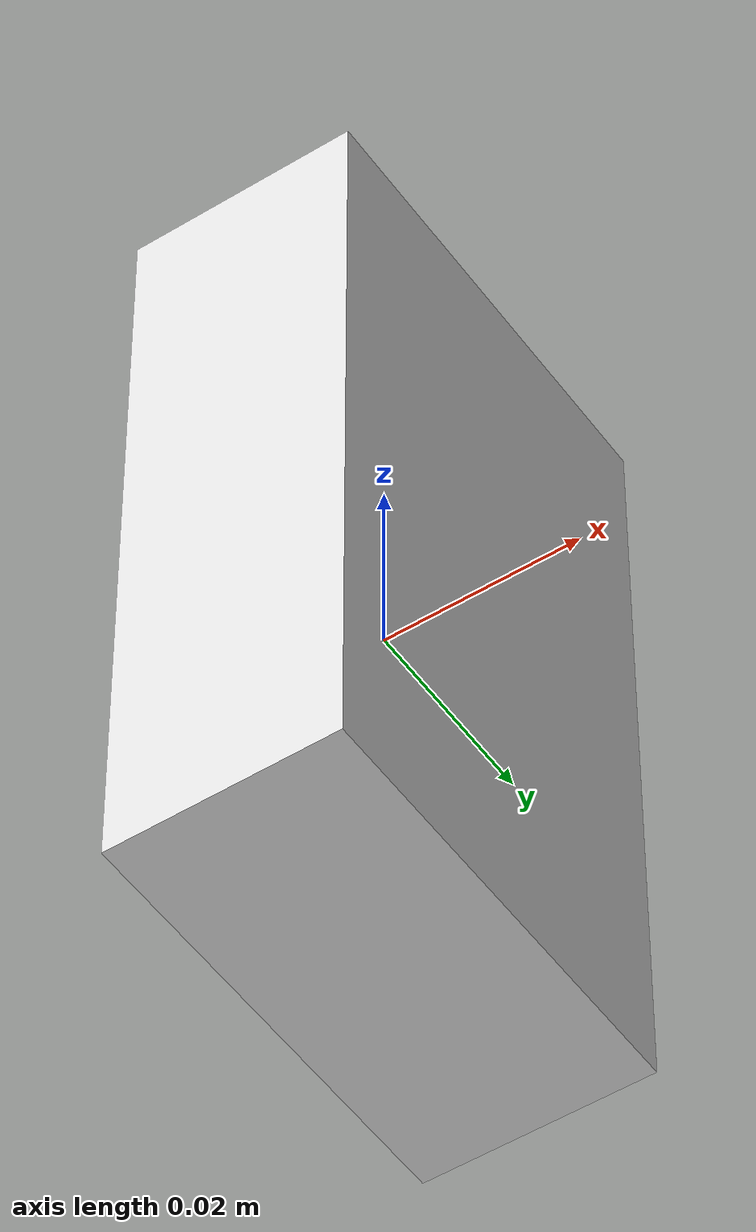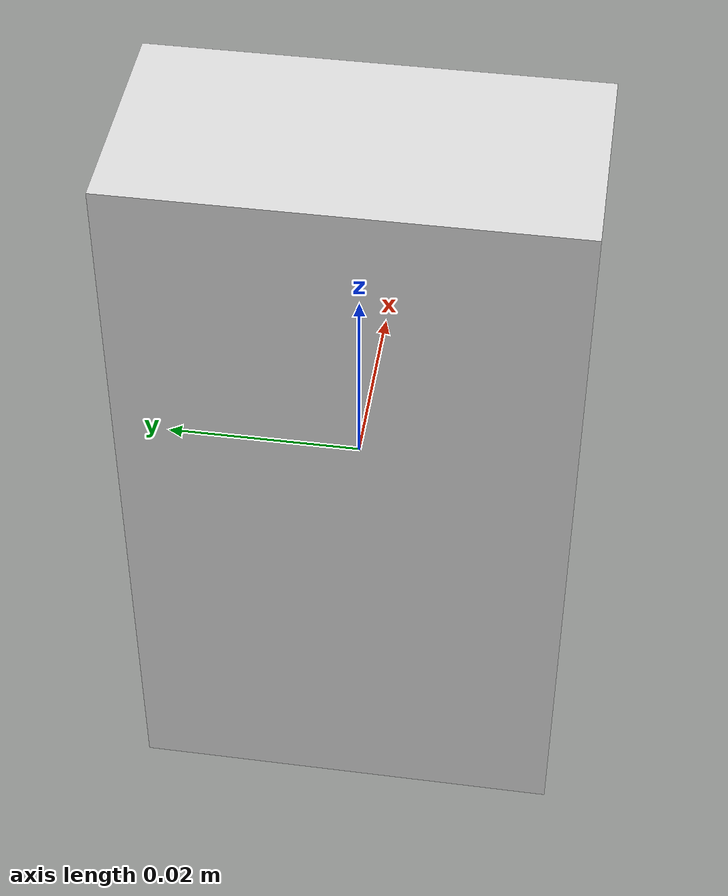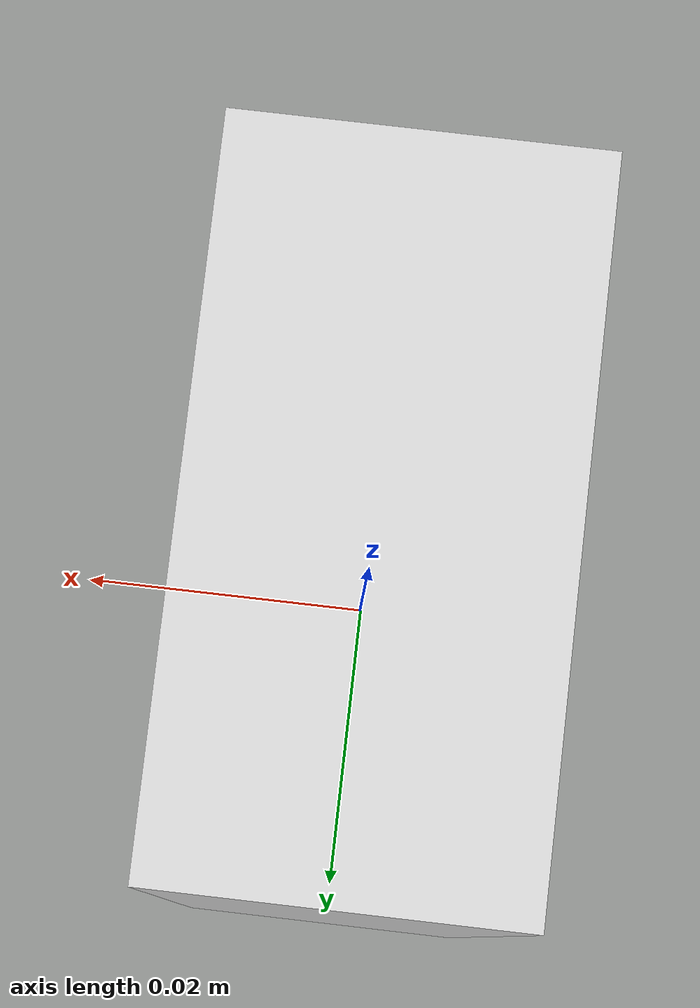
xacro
<robot name="box-setup"
    xmlns:xacro="https://www.ros.org/wiki/xacro">

    <xacro:include filename="$(find ros_basics_models)/urdf/utils/materials.xacro" />
    <xacro:include filename="$(find ros_basics_models)/urdf/utils/inertia.xacro" />

    <xacro:property name="radius" value="0.03"/>
    <xacro:property name="mass" value="0.027"/>

    <xacro:arg name="left_wheel_mu" default="100.0"/>
    <xacro:property name="left_wheel_mu_p" value="$(arg left_wheel_mu)"/>
    <xacro:arg name="right_wheel_mu" default="100.0"/>
    <xacro:property name="right_wheel_mu_p" value="$(arg right_wheel_mu)"/>
    <xacro:property name="wheel_radius" value="0.022"/>
    <xacro:property name="wheel_len" value="0.015"/>
    <xacro:arg name="mass" default="0.270"/>
    <xacro:property name="mass_p" value="$(arg mass)"/>
    <xacro:property name="body_mass" value="${mass_p * 0.80}"/>
    <xacro:property name="wheel_mass" value="${mass_p * 0.10}"/>

    <link name="box">
        <visual>
            <origin xyz="0 0 0"/>
            <geometry>
                <box size="0.023 0.045 0.08"/>
            </geometry>
            <material name="white"/>
        </visual>
        <collision>
            <origin xyz="0 0 0"/>
            <geometry>
                <box size="0.023 0.045 0.08"/>
            </geometry>
            <material name="white"/>
        </collision>
        <inertial>
            <mass value="${body_mass}"/>
            <xacro:box_inertia mass="${body_mass}" x="0.023" y="0.045" z='0.08' />
        </inertial>
    </link>

    <gazebo reference="box">
        <turnGravityOff>false</turnGravityOff>
        <material>Gazebo/Orange</material>
    </gazebo>

</robot>
